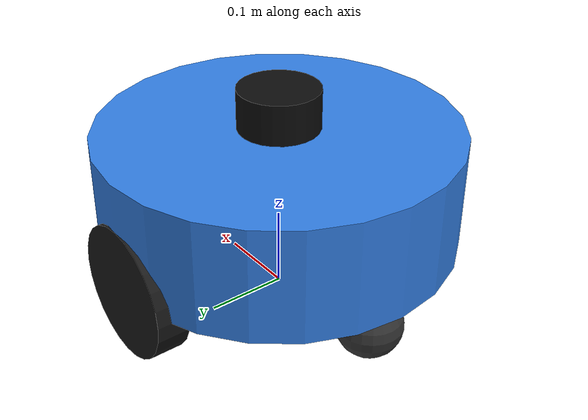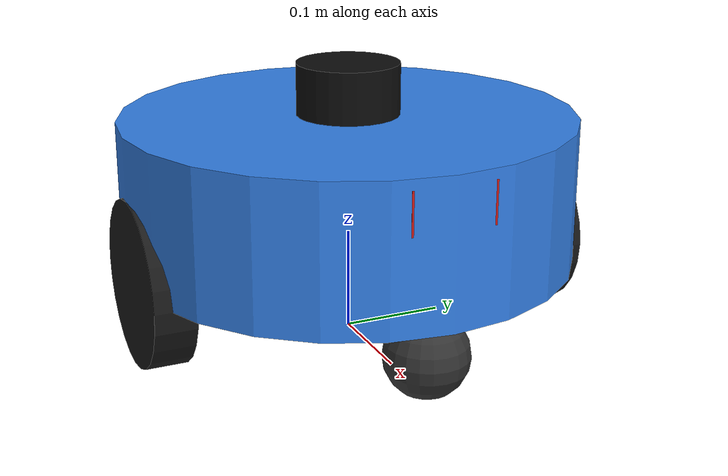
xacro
<?xml version="1.0"?>
<robot xmlns:xacro="http://www.ros.org/wiki/xacro" name="swarm_robot">

  <xacro:arg name="robot_name" default="robot_1"/>
  <xacro:arg name="robot_color" default="Blue"/>
  <xacro:arg name="robot_color_rgba" default="0.2 0.5 0.9 1.0"/>

  <xacro:property name="chassis_radius" value="0.22"/>
  <xacro:property name="chassis_height" value="0.14"/>
  <xacro:property name="chassis_mass" value="4.0"/>

  <xacro:property name="wheel_radius" value="0.08"/>
  <xacro:property name="wheel_width" value="0.04"/>
  <xacro:property name="wheel_separation" value="0.40"/>
  <xacro:property name="wheel_mass" value="0.5"/>

  <xacro:property name="caster_radius" value="0.04"/>
  <xacro:property name="caster_mass" value="0.2"/>

  <!-- Base Footprint -->
  <link name="base_footprint"/>

  <!-- Base Link / Chassis -->
  <link name="base_link">
    <inertial>
      <origin xyz="0 0 ${chassis_height/2 + caster_radius*2}" rpy="0 0 0"/>
      <mass value="${chassis_mass}"/>
      <inertia ixx="${(chassis_mass/12.0)*(3*chassis_radius*chassis_radius + chassis_height*chassis_height)}" ixy="0" ixz="0"
               iyy="${(chassis_mass/12.0)*(3*chassis_radius*chassis_radius + chassis_height*chassis_height)}" iyz="0"
               izz="${(chassis_mass/2.0)*(chassis_radius*chassis_radius)}"/>
    </inertial>
    <visual>
      <origin xyz="0 0 ${chassis_height/2 + caster_radius*2}" rpy="0 0 0"/>
      <geometry>
        <cylinder radius="${chassis_radius}" length="${chassis_height}"/>
      </geometry>
      <material name="robot_mat">
        <color rgba="$(arg robot_color_rgba)"/>
      </material>
    </visual>
    <collision>
      <origin xyz="0 0 ${chassis_height/2 + caster_radius*2}" rpy="0 0 0"/>
      <geometry>
        <cylinder radius="${chassis_radius}" length="${chassis_height}"/>
      </geometry>
    </collision>
  </link>

  <joint name="base_joint" type="fixed">
    <parent link="base_footprint"/>
    <child link="base_link"/>
    <origin xyz="0 0 0" rpy="0 0 0"/>
  </joint>

  <!-- Left Wheel -->
  <link name="left_wheel">
    <inertial>
      <mass value="${wheel_mass}"/>
      <inertia ixx="${(wheel_mass/12.0)*(3*wheel_radius*wheel_radius + wheel_width*wheel_width)}" ixy="0" ixz="0"
               iyy="${(wheel_mass/12.0)*(3*wheel_radius*wheel_radius + wheel_width*wheel_width)}" iyz="0"
               izz="${(wheel_mass/2.0)*(wheel_radius*wheel_radius)}"/>
    </inertial>
    <visual>
      <origin xyz="0 0 0" rpy="${pi/2} 0 0"/>
      <geometry>
        <cylinder radius="${wheel_radius}" length="${wheel_width}"/>
      </geometry>
      <material name="black">
        <color rgba="0.1 0.1 0.1 1.0"/>
      </material>
    </visual>
    <collision>
      <origin xyz="0 0 0" rpy="${pi/2} 0 0"/>
      <geometry>
        <cylinder radius="${wheel_radius}" length="${wheel_width}"/>
      </geometry>
    </collision>
  </link>

  <joint name="left_wheel_joint" type="continuous">
    <parent link="base_link"/>
    <child link="left_wheel"/>
    <origin xyz="0 ${wheel_separation/2} ${wheel_radius}" rpy="0 0 0"/>
    <axis xyz="0 1 0"/>
  </joint>

  <!-- Right Wheel -->
  <link name="right_wheel">
    <inertial>
      <mass value="${wheel_mass}"/>
      <inertia ixx="${(wheel_mass/12.0)*(3*wheel_radius*wheel_radius + wheel_width*wheel_width)}" ixy="0" ixz="0"
               iyy="${(wheel_mass/12.0)*(3*wheel_radius*wheel_radius + wheel_width*wheel_width)}" iyz="0"
               izz="${(wheel_mass/2.0)*(wheel_radius*wheel_radius)}"/>
    </inertial>
    <visual>
      <origin xyz="0 0 0" rpy="${pi/2} 0 0"/>
      <geometry>
        <cylinder radius="${wheel_radius}" length="${wheel_width}"/>
      </geometry>
      <material name="black">
        <color rgba="0.1 0.1 0.1 1.0"/>
      </material>
    </visual>
    <collision>
      <origin xyz="0 0 0" rpy="${pi/2} 0 0"/>
      <geometry>
        <cylinder radius="${wheel_radius}" length="${wheel_width}"/>
      </geometry>
    </collision>
  </link>

  <joint name="right_wheel_joint" type="continuous">
    <parent link="base_link"/>
    <child link="right_wheel"/>
    <origin xyz="0 -${wheel_separation/2} ${wheel_radius}" rpy="0 0 0"/>
    <axis xyz="0 1 0"/>
  </joint>

  <!-- Front Caster -->
  <link name="front_caster">
    <inertial>
      <mass value="${caster_mass}"/>
      <inertia ixx="0.0001" ixy="0" ixz="0" iyy="0.0001" iyz="0" izz="0.0001"/>
    </inertial>
    <visual>
      <geometry>
        <sphere radius="${caster_radius}"/>
      </geometry>
      <material name="dark">
        <color rgba="0.2 0.2 0.2 1.0"/>
      </material>
    </visual>
    <collision>
      <geometry>
        <sphere radius="${caster_radius}"/>
      </geometry>
    </collision>
  </link>

  <joint name="front_caster_joint" type="fixed">
    <parent link="base_link"/>
    <child link="front_caster"/>
    <origin xyz="${chassis_radius - 0.05} 0 ${caster_radius}" rpy="0 0 0"/>
  </joint>

  <!-- Rear Caster -->
  <link name="rear_caster">
    <inertial>
      <mass value="${caster_mass}"/>
      <inertia ixx="0.0001" ixy="0" ixz="0" iyy="0.0001" iyz="0" izz="0.0001"/>
    </inertial>
    <visual>
      <geometry>
        <sphere radius="${caster_radius}"/>
      </geometry>
      <material name="dark">
        <color rgba="0.2 0.2 0.2 1.0"/>
      </material>
    </visual>
    <collision>
      <geometry>
        <sphere radius="${caster_radius}"/>
      </geometry>
    </collision>
  </link>

  <joint name="rear_caster_joint" type="fixed">
    <parent link="base_link"/>
    <child link="rear_caster"/>
    <origin xyz="-${chassis_radius - 0.05} 0 ${caster_radius}" rpy="0 0 0"/>
  </joint>

  <!-- 2D LiDAR Link -->
  <link name="lidar_link">
    <inertial>
      <mass value="0.2"/>
      <inertia ixx="0.0001" ixy="0" ixz="0" iyy="0.0001" iyz="0" izz="0.0001"/>
    </inertial>
    <visual>
      <geometry>
        <cylinder radius="0.05" length="0.05"/>
      </geometry>
      <material name="lidar_mat">
        <color rgba="0.05 0.05 0.05 1.0"/>
      </material>
    </visual>
    <collision>
      <geometry>
        <cylinder radius="0.05" length="0.05"/>
      </geometry>
    </collision>
  </link>

  <joint name="lidar_joint" type="fixed">
    <parent link="base_link"/>
    <child link="lidar_link"/>
    <origin xyz="0 0 ${chassis_height + caster_radius*2 + 0.025}" rpy="0 0 0"/>
  </joint>

  <!-- Camera Link (Front Facing) -->
  <link name="camera_link">
    <inertial>
      <mass value="0.1"/>
      <inertia ixx="0.00005" ixy="0" ixz="0" iyy="0.00005" iyz="0" izz="0.00005"/>
    </inertial>
    <visual>
      <geometry>
        <box size="0.03 0.08 0.04"/>
      </geometry>
      <material name="cam_mat">
        <color rgba="0.8 0.1 0.1 1.0"/>
      </material>
    </visual>
    <collision>
      <geometry>
        <box size="0.03 0.08 0.04"/>
      </geometry>
    </collision>
  </link>

  <joint name="camera_joint" type="fixed">
    <parent link="base_link"/>
    <child link="camera_link"/>
    <origin xyz="${chassis_radius - 0.02} 0 ${chassis_height/2 + caster_radius*2 + 0.04}" rpy="0 0 0"/>
  </joint>

  <!-- IMU Link -->
  <link name="imu_link"/>
  <joint name="imu_joint" type="fixed">
    <parent link="base_link"/>
    <child link="imu_link"/>
    <origin xyz="0 0 ${chassis_height/2 + caster_radius*2}" rpy="0 0 0"/>
  </joint>

  <!-- GAZEBO PLUGINS AND PROPERTIES -->
  <gazebo reference="base_link">
    <material>Gazebo/$(arg robot_color)</material>
  </gazebo>
  <gazebo reference="left_wheel">
    <material>Gazebo/FlatBlack</material>
    <mu1>1.5</mu1>
    <mu2>1.5</mu2>
  </gazebo>
  <gazebo reference="right_wheel">
    <material>Gazebo/FlatBlack</material>
    <mu1>1.5</mu1>
    <mu2>1.5</mu2>
  </gazebo>
  <gazebo reference="front_caster">
    <material>Gazebo/Grey</material>
    <mu1>0.001</mu1>
    <mu2>0.001</mu2>
  </gazebo>
  <gazebo reference="rear_caster">
    <material>Gazebo/Grey</material>
    <mu1>0.001</mu1>
    <mu2>0.001</mu2>
  </gazebo>

  <!-- Differential Drive Controller Plugin -->
  <gazebo>
    <plugin name="differential_drive_controller" filename="libgazebo_ros_diff_drive.so">
      <ros>
        <namespace>$(arg robot_name)</namespace>
        <remapping>cmd_vel:=cmd_vel</remapping>
        <remapping>odom:=odom</remapping>
      </ros>
      <update_rate>50</update_rate>
      <left_joint>left_wheel_joint</left_joint>
      <right_joint>right_wheel_joint</right_joint>
      <wheel_separation>${wheel_separation}</wheel_separation>
      <wheel_diameter>${wheel_radius * 2}</wheel_diameter>
      <max_wheel_torque>20</max_wheel_torque>
      <max_wheel_acceleration>1.5</max_wheel_acceleration>
      <command_topic>cmd_vel</command_topic>
      <publish_odom>true</publish_odom>
      <publish_odom_tf>true</publish_odom_tf>
      <publish_wheel_tf>false</publish_wheel_tf>
      <odometry_topic>odom</odometry_topic>
      <odometry_frame>$(arg robot_name)/odom</odometry_frame>
      <robot_base_frame>$(arg robot_name)/base_footprint</robot_base_frame>
    </plugin>
  </gazebo>

  <!-- 2D LiDAR Sensor Plugin -->
  <gazebo reference="lidar_link">
    <material>Gazebo/Black</material>
    <sensor type="ray" name="$(arg robot_name)_lidar">
      <pose>0 0 0 0 0 0</pose>
      <visualize>false</visualize>
      <update_rate>10</update_rate>
      <ray>
        <scan>
          <horizontal>
            <samples>360</samples>
            <resolution>1</resolution>
            <min_angle>-3.14159265</min_angle>
            <max_angle>3.14159265</max_angle>
          </horizontal>
        </scan>
        <range>
          <min>0.12</min>
          <max>15.0</max>
          <resolution>0.01</resolution>
        </range>
        <noise>
          <type>gaussian</type>
          <mean>0.0</mean>
          <stddev>0.01</stddev>
        </noise>
      </ray>
      <plugin name="$(arg robot_name)_laser" filename="libgazebo_ros_ray_sensor.so">
        <ros>
          <namespace>$(arg robot_name)</namespace>
          <remapping>~/out:=scan</remapping>
        </ros>
        <output_type>sensor_msgs/LaserScan</output_type>
        <frame_name>$(arg robot_name)/lidar_link</frame_name>
      </plugin>
    </sensor>
  </gazebo>

  <!-- RGB Camera Sensor Plugin -->
  <gazebo reference="camera_link">
    <material>Gazebo/Red</material>
    <sensor type="camera" name="$(arg robot_name)_camera">
      <update_rate>15.0</update_rate>
      <camera name="head">
        <horizontal_fov>1.5707963</horizontal_fov>
        <image>
          <width>640</width>
          <height>480</height>
          <format>R8G8B8</format>
        </image>
        <clip>
          <near>0.1</near>
          <far>25.0</far>
        </clip>
      </camera>
      <plugin name="$(arg robot_name)_camera_controller" filename="libgazebo_ros_camera.so">
        <ros>
          <namespace>$(arg robot_name)</namespace>
          <remapping>~/image_raw:=camera/image_raw</remapping>
          <remapping>~/camera_info:=camera/camera_info</remapping>
        </ros>
        <camera_name>camera</camera_name>
        <frame_name>$(arg robot_name)/camera_link</frame_name>
      </plugin>
    </sensor>
  </gazebo>

  <!-- IMU Sensor Plugin -->
  <gazebo reference="imu_link">
    <sensor name="$(arg robot_name)_imu" type="imu">
      <always_on>true</always_on>
      <update_rate>50</update_rate>
      <plugin name="$(arg robot_name)_imu_plugin" filename="libgazebo_ros_imu_sensor.so">
        <ros>
          <namespace>$(arg robot_name)</namespace>
          <remapping>~/out:=imu</remapping>
        </ros>
        <initial_orientation_as_reference>false</initial_orientation_as_reference>
        <frame_name>$(arg robot_name)/imu_link</frame_name>
      </plugin>
    </sensor>
  </gazebo>

</robot>
